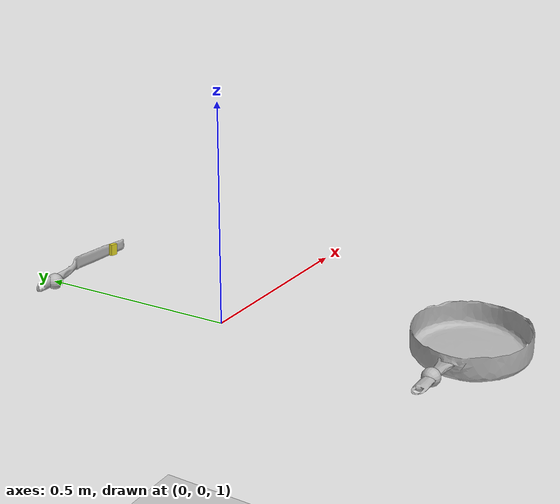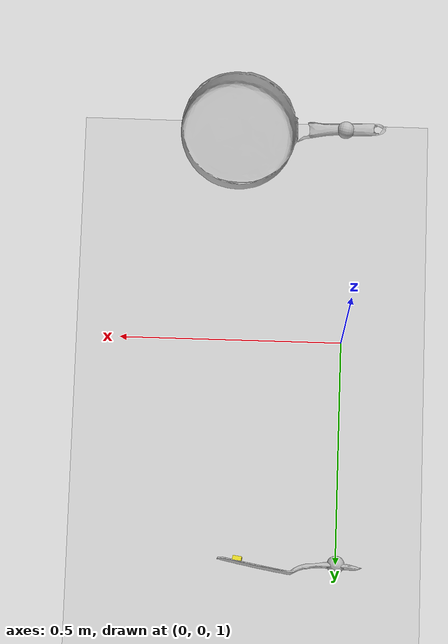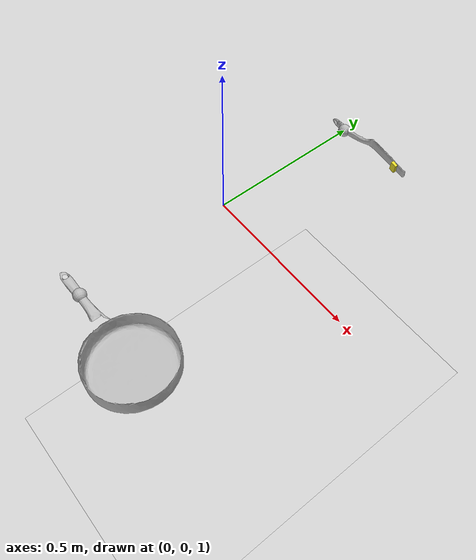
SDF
<?xml version='1.0'?>
<sdf version="1.6">
    <world name="b_frying_pan_b_thin_spatula_v">

        <include>
            <uri>model://sun</uri>
        </include>

        <include>
            <uri>model://ground_plane</uri>
        </include>

        <include>
            <uri>model://b_thin_spatula</uri>
            <pose>0.094321 0.507657 1.009274 -1.637236 0.074980 -3.141592</pose>
        </include>

        <include>
            <uri>model://butter_box</uri>
            <pose>0.218391 0.495434 1.018867 1.118105 1.524620 2.552731</pose>
            <plugin name="stick" filename="libStickPlugin.so">
              <parentLinkName>link</parentLinkName>
              <childLinkName>b_thin_spatula::link</childLinkName>
              <force>5</force>
            </plugin>
        </include>

        <include>
            <uri>model://b_frying_pan</uri>
            <pose>0.228443 -0.496122 0.971397 0 0 0</pose>
        </include>

        <!-- Left Gripper -->
        <include>
            <uri>model://gripper</uri>
            <name>left_ee</name>
            <pose>0 0.5 1 0 0 0</pose>

            <plugin name="l_force_controller" filename="libvelocity_controller_plugin.so">
              <linkName>link</linkName>
              <topicName>set_l_ee_twist</topicName>
              <gains>
                <linear>
                  <P>100.0</P>
                  <I>0.0</I>
                  <D>25.0</D>
                </linear>
                <angular>
                  <P>100.0</P>
                  <I>0.0</I>
                  <D>25.0</D>
                </angular>
              </gains>
            </plugin>

            <plugin name="l_grip" filename="libGripPlugin.so">
              <parentLinkName>link</parentLinkName>
              <childLinkName>b_thin_spatula::link</childLinkName>
              <relativePose>0.094321 0.007657 0.009274 -1.63724 0.07498 -3.14159</relativePose>
            </plugin>

            <plugin name="l_tf_broadcaster" filename="libtf_broadcaster_plugin.so">
              <linkName>link</linkName>
              <frameName>l_gripper_tool_frame</frameName>
            </plugin>
        </include>

        <!-- Right Gripper -->
        <include>
            <uri>model://gripper</uri>
            <name>right_ee</name>
            <pose>0 -0.5 1 1.547368 1.402341 1.343703</pose>

            <plugin name="r_force_controller" filename="libvelocity_controller_plugin.so">
              <linkName>link</linkName>
              <topicName>set_r_ee_twist</topicName>
              <gains>
                <linear>
                  <P>100.0</P>
                  <I>0.0</I>
                  <D>25.0</D>
                </linear>
                <angular>
                  <P>100.0</P>
                  <I>0.0</I>
                  <D>25.0</D>
                </angular>
              </gains>
            </plugin>

            <plugin name="r_grip" filename="libGripPlugin.so">
              <parentLinkName>link</parentLinkName>
              <childLinkName>b_frying_pan::link</childLinkName>
              <relativePose>0.0186144 0.0468562 0.224672 -1.55141 -1.36676 1.3834</relativePose>
            </plugin>

            <plugin name="r_tf_broadcaster" filename="libtf_broadcaster_plugin.so">
              <linkName>link</linkName>
              <frameName>r_gripper_tool_frame</frameName>
            </plugin>
        </include>

        <plugin name="feature_visualization_plugin" filename="libgiskard_visualization_plugin.so"></plugin>

        <gui>
            <camera name='user_camera'>
                <pose>1.700789 1.175709 1.670612 0 0.375643 -2.675000</pose>
                <view_controller>orbit</view_controller>
            </camera>
        </gui>

    </world>
</sdf>

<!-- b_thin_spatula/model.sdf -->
<sdf version='1.6'>
	<model name='b_thin_spatula'>
		<static>false</static>
		<pose>0 0 0 0 0 0</pose>

		<link name='link'>
			<inertial>
			<mass>0.11</mass>
			<pose>2.3574e-18 -4.8479e-20 1.6546e-18 0 0 0</pose>
				<inertia>
					<ixx>1.7189e-07</ixx>
					<ixy>0</ixy>
					<ixz>0</ixz>
					<iyy>1.904e-07</iyy>
					<iyz>0</iyz>
					<izz>3.3856e-08</izz>
				</inertia>
			</inertial>
			<sensor name="tool_contact_sensor" type="contact">
				<always_on>true</always_on>
				<update_rate>30.0</update_rate>
				<contact>
					<collision>collision</collision>
				</contact>
				<plugin name="tool_bumper" filename="libgazebo_ros_bumper.so">
					<bumperTopicName>tool_contact_sensor_state</bumperTopicName>
					<frameName>world</frameName>
				</plugin>
			</sensor>
			<collision name='collision'>
				<geometry>
					<mesh>
						<uri>model://b_thin_spatula/b_thin_spatula.dae</uri>
					</mesh>
				</geometry>
				<surface>
					<friction>
						<ode>
							<mu>0.2</mu>
							<mu2>0.2</mu2>
						</ode>
					</friction>
				</surface>
			</collision>
			<visual name='visual'>
				<geometry>
					<mesh>
						<uri>model://b_thin_spatula/b_thin_spatula.dae</uri>
					</mesh>
				</geometry>
			</visual>
		</link>
	</model>
</sdf>

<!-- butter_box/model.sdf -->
<sdf version='1.6'>
    <model name='butter_box'>
        <static>false</static>
        <pose>0 0 0 0 0 0</pose>
        <link name='link'>
            <pose>0 0 0 0 0 0</pose>
            <inertial>
                <mass>0.001</mass>
                <pose>0 0 0 0 0 0</pose>
                <inertia>
                    <ixx>0.00000004167</ixx>
                    <iyy>0.00000008333</iyy>
                    <izz>0.00000010833</izz>
                    <ixy>0</ixy>
                    <ixz>0</ixz>
                    <iyz>0</iyz>
                </inertia>
            </inertial>
            <collision name='collision'>
                <geometry>
                    <box>
                        <size>0.03 0.02 0.01</size>
                    </box>
                </geometry>
                <surface>
                    <friction>
                        <ode>
                            <mu>0.2</mu>
                            <mu2>0.2</mu2>
                        </ode>
                    </friction>
                </surface>
            </collision>
            <visual name='visual'>
                <geometry>
                    <box>
                        <size>0.03 0.02 0.01</size>
                    </box>
                </geometry>
                <material>
                    <script>
                        <name>Gazebo/Yellow</name>
                        <uri>file://media/materials/scripts/gazebo.material</uri>
                    </script>
                </material>
            </visual>
        </link>
    </model>
</sdf>

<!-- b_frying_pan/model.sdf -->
<sdf version='1.6'>
    <model name='b_frying_pan'>
        <static>false</static>
        <pose>0 0 0 0 0 0</pose>

        <link name='link'>
            <inertial>
                <mass>1</mass>
                <pose>0.002625 0.0 0.01465 0 0 0</pose>
                <inertia>
                    <ixx>0.007971675</ixx>
                    <iyy>0.008713309</iyy>
                    <izz>0.016311566</izz>
                    <ixy>-1.69694542e-019</ixy>
                    <ixz>-0.000025788</ixz>
                    <iyz>-6.28650663e-021</iyz>
                </inertia>
            </inertial>t

            <collision name='collision'>
                <geometry>
                    <mesh>
                        <uri>model://b_frying_pan/b_frying_pan.dae</uri>
                    </mesh>
                </geometry>
                <surface>
                    <friction>
                        <ode>
                            <mu>0.2</mu>
                            <mu2>0.2</mu2>
                        </ode>
                    </friction>
                </surface>
            </collision>
            <visual name='visual'>
                <geometry>
                    <mesh>
                        <uri>model://b_frying_pan/b_frying_pan.dae</uri>
                    </mesh>
                </geometry>
            </visual>
        </link>
    </model>
</sdf>

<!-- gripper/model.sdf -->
<sdf version='1.6'>
    <model name='gripper'>
        <static>false</static>
        <allow_auto_disable>false</allow_auto_disable>

        <pose>0 0 0 0 0 0</pose>

        <link name='link'>
            <pose>0 0 0 0 0 0</pose>

            <gravity>false</gravity>

            <visual name='visual'>
                <geometry>
                    <sphere>
                        <radius>0.02</radius>
                    </sphere>
                </geometry>
            </visual>

        </link>
    </model>
</sdf>
